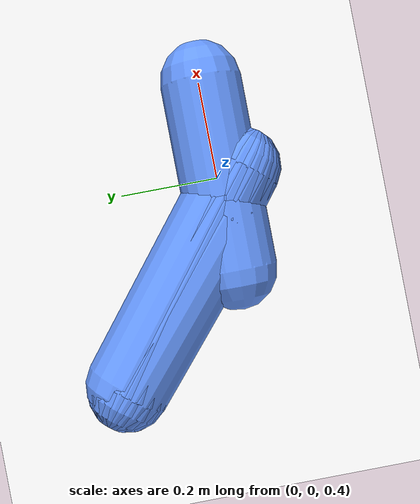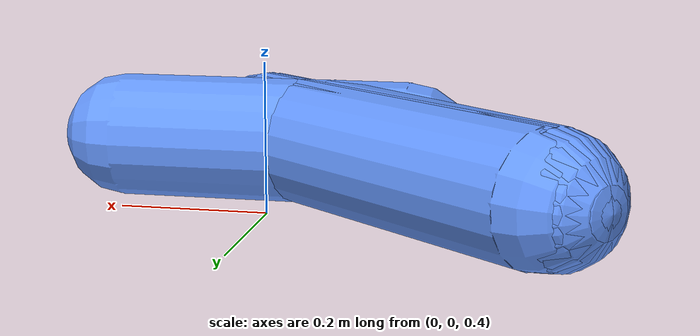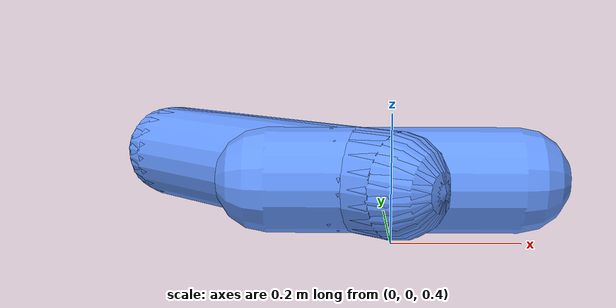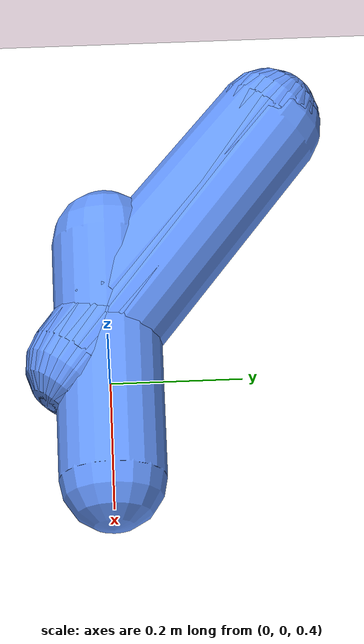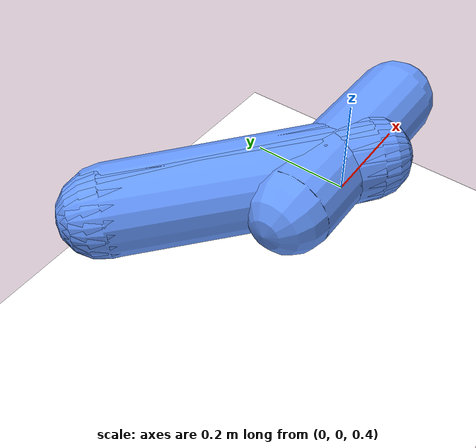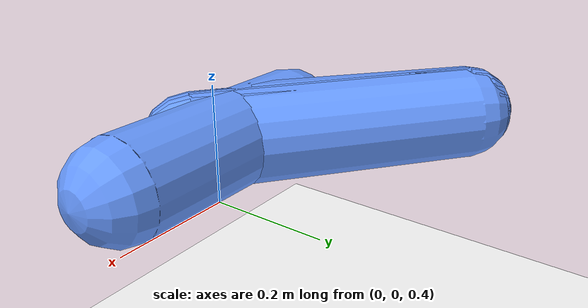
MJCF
<mujoco>
  <compiler angle="degree" coordinate="local" inertiafromgeom="true" />
  <option integrator="RK4" timestep="0.01" />
  <default>
    <joint armature="1" damping="1" limited="true" />
    <geom conaffinity="0" condim="3.0" density="5.0" friction="1 0.5 0.5" margin="0.01" rgba="0.4 0.6 1 1" />
  </default>
  <visual>
    <quality shadowsize="16384" />
    <map shadowclip="10" />
  </visual>
  <asset>
    <texture builtin="gradient" height="100" rgb1="1 1 1" rgb2="0.2 0.2 0.2" type="skybox" width="100" />
    <texture builtin="flat" height="1278" mark="cross" markrgb="1 1 1" name="texgeom" random="0.01" rgb1="0.8 0.6 0.4" rgb2="0.8 0.6 0.4" type="cube" width="127" />
    <texture builtin="checker" height="100" name="texplane" rgb1="0 0 0" rgb2="0.6 0.6 0.6" type="2d" width="100" />
    <material name="MatPlane" reflectance="0.5" shininess="1" specular="1" texrepeat="1 1" texture="texplane" />
    <material name="geom" texture="texgeom" texuniform="true" />
  </asset>
  <worldbody>
    <light cutoff="1" diffuse="1 1 1" dir="-0 0 -1.3" directional="true" exponent="1" pos="0 0 1.3" specular=".1 .1 .1" />
    <geom conaffinity="1" condim="3" material="MatPlane" name="floor" pos="0 0 0" rgba="1 1 1 1" size="0 0 10" type="plane" />
    <body pos="0 0 0.5" name="torso">
      <camera mode="track" pos="0 -3 3" xyaxes="1 0 0 0 1 1" fovy="45" />
      <camera mode="trackcom" pos="0 -2 1" xyaxes="1 0 0 0 1 2" fovy="45" />
      <geom size="0.08" fromto="-0.18774897958671743 0 0 0.18774897958671743 0 0" type="capsule" />
      <joint armature="0" damping="0" limited="false" margin="0.01" pos="0 0 0" type="free" />
      <body pos="-0.08714060285991537 0 0">
        <joint name="leg:0 segment:0" limited="false" type="ball" />
        <geom conaffinity="1" fromto="0 0 0 -0.2954495352967472 0.25342047993037964 0" size="0.08" type="capsule" />
        <body pos="-0.2954495352967472 0.25342047993037964 0">
          <joint name="leg:0 segment:1" limited="true" range="0 -60" type="ball" />
          <geom conaffinity="1" fromto="0 0 0 0.39047617475525787 -0.2984492108318786 0" size="0.08" type="capsule" />
          <body pos="0.39047617475525787 -0.2984492108318786 0">
            <joint name="leg:0 segment:2" limited="false" type="ball" />
            <geom conaffinity="1" fromto="0 0 0 -0.3770284119230636 0.2997747955864969 0" size="0.08" type="capsule" />
          </body>
        </body>
      </body>
    </body>
  </worldbody>
  <actuator>
    <motor joint="leg:0 segment:0" gear="100" />
    <motor joint="leg:0 segment:1" gear="100" />
    <motor joint="leg:0 segment:2" gear="100" />
  </actuator>
</mujoco>
